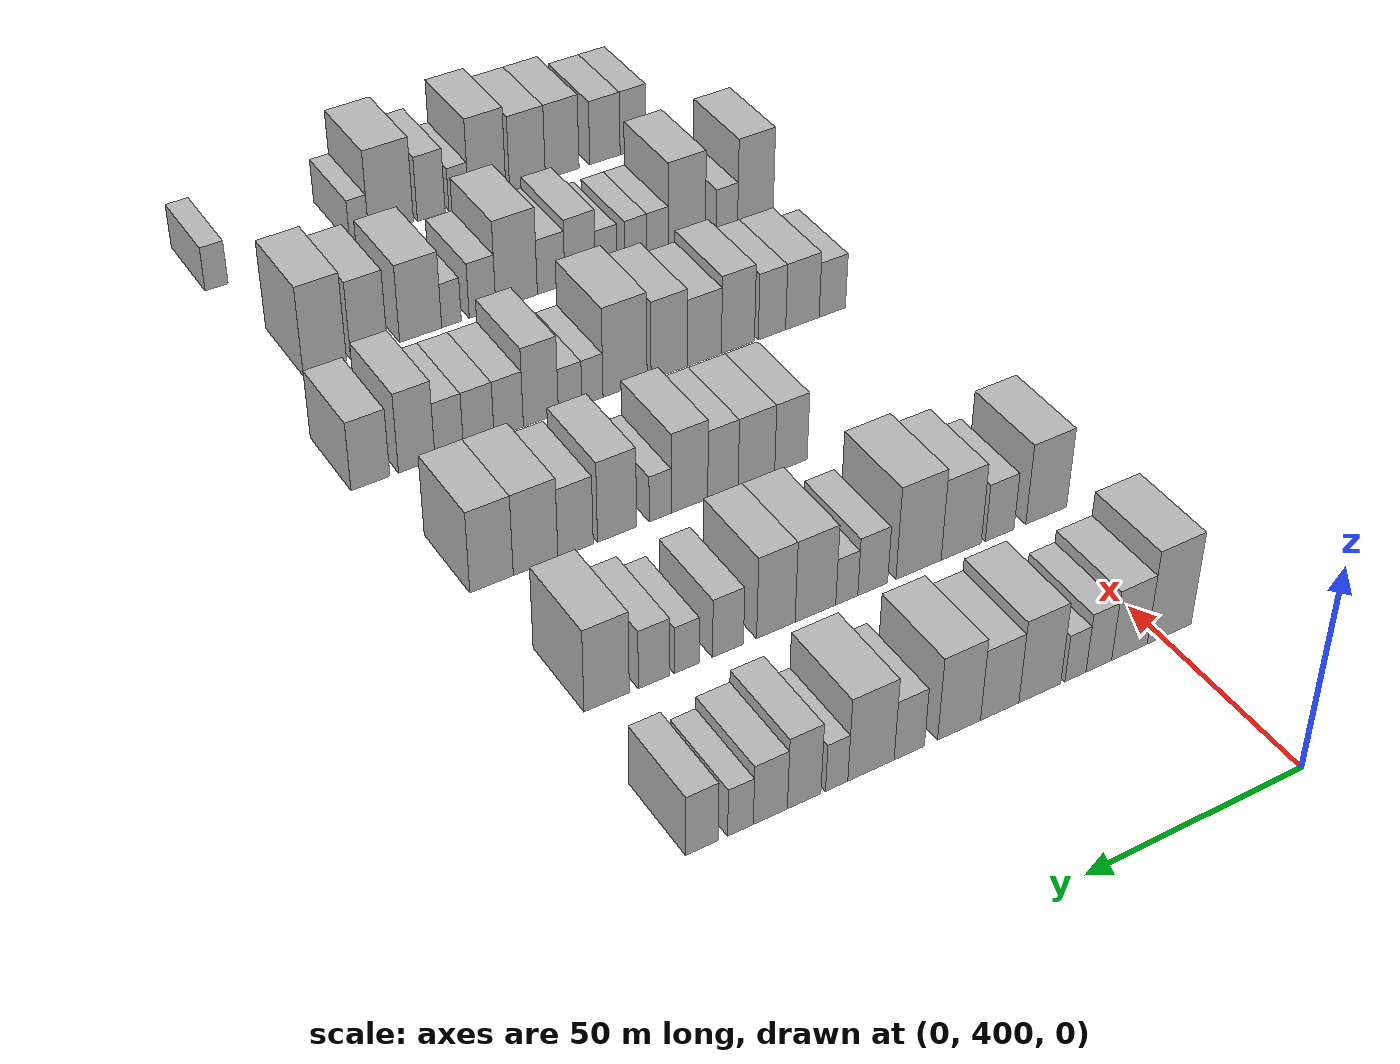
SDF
<sdf version="1.6">
 <world name="default">
  <model name="building_112">
   <static>1</static>
   <pose>50.0000 398.2572 0 0.000000 0.000000 0.000000</pose>
   <link name="link">
    <pose>0 0 12.00 0 0 0</pose>
    <collision name="collision"><geometry><box><size>20.0000 10.8968 24.0000</size></box></geometry></collision>
    <visual name="visual">
     <cast_shadows>0</cast_shadows>
     <geometry><box><size>20.0000 10.8968 24.0000</size></box></geometry>
     <material>
      <script>
       <uri>model://HANNAS_wall/materials/scripts</uri>
       <uri>model://HANNAS_wall/materials/textures</uri>
       <name>vrc/HANNAS_wall</name>
      </script>
     </material>
    </visual>
   </link>
  </model>
  <model name="building_113">
   <static>1</static>
   <pose>50.0000 408.0470 0 0.000000 0.000000 0.000000</pose>
   <link name="link">
    <pose>0 0 9.00 0 0 0</pose>
    <collision name="collision"><geometry><box><size>20.0000 8.6829 18.0000</size></box></geometry></collision>
    <visual name="visual">
     <cast_shadows>0</cast_shadows>
     <geometry><box><size>20.0000 8.6829 18.0000</size></box></geometry>
     <material>
      <script>
       <uri>model://HANNAS_wall/materials/scripts</uri>
       <uri>model://HANNAS_wall/materials/textures</uri>
       <name>vrc/HANNAS_wall</name>
      </script>
     </material>
    </visual>
   </link>
  </model>
  <model name="building_114">
   <static>1</static>
   <pose>50.0000 415.4791 0 0.000000 0.000000 0.000000</pose>
   <link name="link">
    <pose>0 0 7.50 0 0 0</pose>
    <collision name="collision"><geometry><box><size>20.0000 6.1812 15.0000</size></box></geometry></collision>
    <visual name="visual">
     <cast_shadows>0</cast_shadows>
     <geometry><box><size>20.0000 6.1812 15.0000</size></box></geometry>
     <material>
      <script>
       <uri>model://HANNAS_wall/materials/scripts</uri>
       <uri>model://HANNAS_wall/materials/textures</uri>
       <name>vrc/HANNAS_wall</name>
      </script>
     </material>
    </visual>
   </link>
  </model>
  <model name="building_115">
   <static>1</static>
   <pose>50.0000 421.0990 0 0.000000 0.000000 0.000000</pose>
   <link name="link">
    <pose>0 0 6.00 0 0 0</pose>
    <collision name="collision"><geometry><box><size>20.0000 5.0586 12.0000</size></box></geometry></collision>
    <visual name="visual">
     <cast_shadows>0</cast_shadows>
     <geometry><box><size>20.0000 5.0586 12.0000</size></box></geometry>
     <material>
      <script>
       <uri>model://HANNAS_wall/materials/scripts</uri>
       <uri>model://HANNAS_wall/materials/textures</uri>
       <name>vrc/HANNAS_wall</name>
      </script>
     </material>
    </visual>
   </link>
  </model>
  <model name="building_116">
   <static>1</static>
   <pose>50.0000 429.5648 0 0.000000 0.000000 0.000000</pose>
   <link name="link">
    <pose>0 0 10.50 0 0 0</pose>
    <collision name="collision"><geometry><box><size>20.0000 9.8732 21.0000</size></box></geometry></collision>
    <visual name="visual">
     <cast_shadows>0</cast_shadows>
     <geometry><box><size>20.0000 9.8732 21.0000</size></box></geometry>
     <material>
      <script>
       <uri>model://HANNAS_wall/materials/scripts</uri>
       <uri>model://HANNAS_wall/materials/textures</uri>
       <name>vrc/HANNAS_wall</name>
      </script>
     </material>
    </visual>
   </link>
  </model>
  <model name="building_117">
   <static>1</static>
   <pose>50.0000 438.9637 0 0.000000 0.000000 0.000000</pose>
   <link name="link">
    <pose>0 0 9.00 0 0 0</pose>
    <collision name="collision"><geometry><box><size>20.0000 8.9246 18.0000</size></box></geometry></collision>
    <visual name="visual">
     <cast_shadows>0</cast_shadows>
     <geometry><box><size>20.0000 8.9246 18.0000</size></box></geometry>
     <material>
      <script>
       <uri>model://HANNAS_wall/materials/scripts</uri>
       <uri>model://HANNAS_wall/materials/textures</uri>
       <name>vrc/HANNAS_wall</name>
      </script>
     </material>
    </visual>
   </link>
  </model>
  <model name="building_118">
   <static>1</static>
   <pose>50.0000 448.3294 0 0.000000 0.000000 0.000000</pose>
   <link name="link">
    <pose>0 0 10.50 0 0 0</pose>
    <collision name="collision"><geometry><box><size>20.0000 9.8068 21.0000</size></box></geometry></collision>
    <visual name="visual">
     <cast_shadows>0</cast_shadows>
     <geometry><box><size>20.0000 9.8068 21.0000</size></box></geometry>
     <material>
      <script>
       <uri>model://HANNAS_wall/materials/scripts</uri>
       <uri>model://HANNAS_wall/materials/textures</uri>
       <name>vrc/HANNAS_wall</name>
      </script>
     </material>
    </visual>
   </link>
  </model>
  <model name="building_119">
   <static>1</static>
   <pose>50.0000 459.6302 0 0.000000 0.000000 0.000000</pose>
   <link name="link">
    <pose>0 0 7.50 0 0 0</pose>
    <collision name="collision"><geometry><box><size>20.0000 6.7948 15.0000</size></box></geometry></collision>
    <visual name="visual">
     <cast_shadows>0</cast_shadows>
     <geometry><box><size>20.0000 6.7948 15.0000</size></box></geometry>
     <material>
      <script>
       <uri>model://HANNAS_wall/materials/scripts</uri>
       <uri>model://HANNAS_wall/materials/textures</uri>
       <name>vrc/HANNAS_wall</name>
      </script>
     </material>
    </visual>
   </link>
  </model>
  <model name="building_120">
   <static>1</static>
   <pose>50.0000 468.1573 0 0.000000 0.000000 0.000000</pose>
   <link name="link">
    <pose>0 0 10.50 0 0 0</pose>
    <collision name="collision"><geometry><box><size>20.0000 10.2593 21.0000</size></box></geometry></collision>
    <visual name="visual">
     <cast_shadows>0</cast_shadows>
     <geometry><box><size>20.0000 10.2593 21.0000</size></box></geometry>
     <material>
      <script>
       <uri>model://HANNAS_wall/materials/scripts</uri>
       <uri>model://HANNAS_wall/materials/textures</uri>
       <name>vrc/HANNAS_wall</name>
      </script>
     </material>
    </visual>
   </link>
  </model>
  <model name="building_121">
   <static>1</static>
   <pose>50.0000 475.7291 0 0.000000 0.000000 0.000000</pose>
   <link name="link">
    <pose>0 0 6.00 0 0 0</pose>
    <collision name="collision"><geometry><box><size>20.0000 4.8845 12.0000</size></box></geometry></collision>
    <visual name="visual">
     <cast_shadows>0</cast_shadows>
     <geometry><box><size>20.0000 4.8845 12.0000</size></box></geometry>
     <material>
      <script>
       <uri>model://HANNAS_wall/materials/scripts</uri>
       <uri>model://HANNAS_wall/materials/textures</uri>
       <name>vrc/HANNAS_wall</name>
      </script>
     </material>
    </visual>
   </link>
  </model>
  <model name="building_122">
   <static>1</static>
   <pose>50.0000 482.7963 0 0.000000 0.000000 0.000000</pose>
   <link name="link">
    <pose>0 0 9.00 0 0 0</pose>
    <collision name="collision"><geometry><box><size>20.0000 7.2499 18.0000</size></box></geometry></collision>
    <visual name="visual">
     <cast_shadows>0</cast_shadows>
     <geometry><box><size>20.0000 7.2499 18.0000</size></box></geometry>
     <material>
      <script>
       <uri>model://HANNAS_wall/materials/scripts</uri>
       <uri>model://HANNAS_wall/materials/textures</uri>
       <name>vrc/HANNAS_wall</name>
      </script>
     </material>
    </visual>
   </link>
  </model>
  <model name="building_123">
   <static>1</static>
   <pose>50.0000 490.0557 0 0.000000 0.000000 0.000000</pose>
   <link name="link">
    <pose>0 0 7.50 0 0 0</pose>
    <collision name="collision"><geometry><box><size>20.0000 7.2689 15.0000</size></box></geometry></collision>
    <visual name="visual">
     <cast_shadows>0</cast_shadows>
     <geometry><box><size>20.0000 7.2689 15.0000</size></box></geometry>
     <material>
      <script>
       <uri>model://HANNAS_wall/materials/scripts</uri>
       <uri>model://HANNAS_wall/materials/textures</uri>
       <name>vrc/HANNAS_wall</name>
      </script>
     </material>
    </visual>
   </link>
  </model>
  <model name="building_124">
   <static>1</static>
   <pose>50.0000 496.4019 0 0.000000 0.000000 0.000000</pose>
   <link name="link">
    <pose>0 0 6.00 0 0 0</pose>
    <collision name="collision"><geometry><box><size>20.0000 5.4235 12.0000</size></box></geometry></collision>
    <visual name="visual">
     <cast_shadows>0</cast_shadows>
     <geometry><box><size>20.0000 5.4235 12.0000</size></box></geometry>
     <material>
      <script>
       <uri>model://HANNAS_wall/materials/scripts</uri>
       <uri>model://HANNAS_wall/materials/textures</uri>
       <name>vrc/HANNAS_wall</name>
      </script>
     </material>
    </visual>
   </link>
  </model>
  <model name="building_125">
   <static>1</static>
   <pose>50.0000 504.4912 0 0.000000 0.000000 0.000000</pose>
   <link name="link">
    <pose>0 0 7.50 0 0 0</pose>
    <collision name="collision"><geometry><box><size>20.0000 6.7550 15.0000</size></box></geometry></collision>
    <visual name="visual">
     <cast_shadows>0</cast_shadows>
     <geometry><box><size>20.0000 6.7550 15.0000</size></box></geometry>
     <material>
      <script>
       <uri>model://HANNAS_wall/materials/scripts</uri>
       <uri>model://HANNAS_wall/materials/textures</uri>
       <name>vrc/HANNAS_wall</name>
      </script>
     </material>
    </visual>
   </link>
  </model>
  <model name="building_248">
   <static>1</static>
   <pose>90.0000 397.5762 0 0.000000 0.000000 0.000000</pose>
   <link name="link">
    <pose>0 0 10.50 0 0 0</pose>
    <collision name="collision"><geometry><box><size>20.0000 10.4200 21.0000</size></box></geometry></collision>
    <visual name="visual">
     <cast_shadows>0</cast_shadows>
     <geometry><box><size>20.0000 10.4200 21.0000</size></box></geometry>
     <material>
      <script>
       <uri>model://HANNAS_wall/materials/scripts</uri>
       <uri>model://HANNAS_wall/materials/textures</uri>
       <name>vrc/HANNAS_wall</name>
      </script>
     </material>
    </visual>
   </link>
  </model>
  <model name="building_249">
   <static>1</static>
   <pose>90.0000 409.3842 0 0.000000 0.000000 0.000000</pose>
   <link name="link">
    <pose>0 0 7.50 0 0 0</pose>
    <collision name="collision"><geometry><box><size>20.0000 7.1959 15.0000</size></box></geometry></collision>
    <visual name="visual">
     <cast_shadows>0</cast_shadows>
     <geometry><box><size>20.0000 7.1959 15.0000</size></box></geometry>
     <material>
      <script>
       <uri>model://HANNAS_wall/materials/scripts</uri>
       <uri>model://HANNAS_wall/materials/textures</uri>
       <name>vrc/HANNAS_wall</name>
      </script>
     </material>
    </visual>
   </link>
  </model>
  <model name="building_250">
   <static>1</static>
   <pose>90.0000 418.9399 0 0.000000 0.000000 0.000000</pose>
   <link name="link">
    <pose>0 0 10.50 0 0 0</pose>
    <collision name="collision"><geometry><box><size>20.0000 9.9155 21.0000</size></box></geometry></collision>
    <visual name="visual">
     <cast_shadows>0</cast_shadows>
     <geometry><box><size>20.0000 9.9155 21.0000</size></box></geometry>
     <material>
      <script>
       <uri>model://HANNAS_wall/materials/scripts</uri>
       <uri>model://HANNAS_wall/materials/textures</uri>
       <name>vrc/HANNAS_wall</name>
      </script>
     </material>
    </visual>
   </link>
  </model>
  <model name="building_251">
   <static>1</static>
   <pose>90.0000 429.3923 0 0.000000 0.000000 0.000000</pose>
   <link name="link">
    <pose>0 0 12.00 0 0 0</pose>
    <collision name="collision"><geometry><box><size>20.0000 10.9893 24.0000</size></box></geometry></collision>
    <visual name="visual">
     <cast_shadows>0</cast_shadows>
     <geometry><box><size>20.0000 10.9893 24.0000</size></box></geometry>
     <material>
      <script>
       <uri>model://HANNAS_wall/materials/scripts</uri>
       <uri>model://HANNAS_wall/materials/textures</uri>
       <name>vrc/HANNAS_wall</name>
      </script>
     </material>
    </visual>
   </link>
  </model>
  <model name="building_252">
   <static>1</static>
   <pose>90.0000 440.4559 0 0.000000 0.000000 0.000000</pose>
   <link name="link">
    <pose>0 0 7.50 0 0 0</pose>
    <collision name="collision"><geometry><box><size>20.0000 7.1380 15.0000</size></box></geometry></collision>
    <visual name="visual">
     <cast_shadows>0</cast_shadows>
     <geometry><box><size>20.0000 7.1380 15.0000</size></box></geometry>
     <material>
      <script>
       <uri>model://HANNAS_wall/materials/scripts</uri>
       <uri>model://HANNAS_wall/materials/textures</uri>
       <name>vrc/HANNAS_wall</name>
      </script>
     </material>
    </visual>
   </link>
  </model>
  <model name="building_253">
   <static>1</static>
   <pose>90.0000 446.6306 0 0.000000 0.000000 0.000000</pose>
   <link name="link">
    <pose>0 0 6.00 0 0 0</pose>
    <collision name="collision"><geometry><box><size>20.0000 5.2112 12.0000</size></box></geometry></collision>
    <visual name="visual">
     <cast_shadows>0</cast_shadows>
     <geometry><box><size>20.0000 5.2112 12.0000</size></box></geometry>
     <material>
      <script>
       <uri>model://HANNAS_wall/materials/scripts</uri>
       <uri>model://HANNAS_wall/materials/textures</uri>
       <name>vrc/HANNAS_wall</name>
      </script>
     </material>
    </visual>
   </link>
  </model>
  <model name="building_254">
   <static>1</static>
   <pose>90.0000 454.0018 0 0.000000 0.000000 0.000000</pose>
   <link name="link">
    <pose>0 0 10.50 0 0 0</pose>
    <collision name="collision"><geometry><box><size>20.0000 9.5312 21.0000</size></box></geometry></collision>
    <visual name="visual">
     <cast_shadows>0</cast_shadows>
     <geometry><box><size>20.0000 9.5312 21.0000</size></box></geometry>
     <material>
      <script>
       <uri>model://HANNAS_wall/materials/scripts</uri>
       <uri>model://HANNAS_wall/materials/textures</uri>
       <name>vrc/HANNAS_wall</name>
      </script>
     </material>
    </visual>
   </link>
  </model>
  <model name="building_255">
   <static>1</static>
   <pose>90.0000 463.2066 0 0.000000 0.000000 0.000000</pose>
   <link name="link">
    <pose>0 0 10.50 0 0 0</pose>
    <collision name="collision"><geometry><box><size>20.0000 8.8784 21.0000</size></box></geometry></collision>
    <visual name="visual">
     <cast_shadows>0</cast_shadows>
     <geometry><box><size>20.0000 8.8784 21.0000</size></box></geometry>
     <material>
      <script>
       <uri>model://HANNAS_wall/materials/scripts</uri>
       <uri>model://HANNAS_wall/materials/textures</uri>
       <name>vrc/HANNAS_wall</name>
      </script>
     </material>
    </visual>
   </link>
  </model>
  <model name="building_256">
   <static>1</static>
   <pose>90.0000 474.1588 0 0.000000 0.000000 0.000000</pose>
   <link name="link">
    <pose>0 0 7.50 0 0 0</pose>
    <collision name="collision"><geometry><box><size>20.0000 7.0260 15.0000</size></box></geometry></collision>
    <visual name="visual">
     <cast_shadows>0</cast_shadows>
     <geometry><box><size>20.0000 7.0260 15.0000</size></box></geometry>
     <material>
      <script>
       <uri>model://HANNAS_wall/materials/scripts</uri>
       <uri>model://HANNAS_wall/materials/textures</uri>
       <name>vrc/HANNAS_wall</name>
      </script>
     </material>
    </visual>
   </link>
  </model>
  <model name="building_257">
   <static>1</static>
   <pose>90.0000 483.4395 0 0.000000 0.000000 0.000000</pose>
   <link name="link">
    <pose>0 0 6.00 0 0 0</pose>
    <collision name="collision"><geometry><box><size>20.0000 5.5355 12.0000</size></box></geometry></collision>
    <visual name="visual">
     <cast_shadows>0</cast_shadows>
     <geometry><box><size>20.0000 5.5355 12.0000</size></box></geometry>
     <material>
      <script>
       <uri>model://HANNAS_wall/materials/scripts</uri>
       <uri>model://HANNAS_wall/materials/textures</uri>
       <name>vrc/HANNAS_wall</name>
      </script>
     </material>
    </visual>
   </link>
  </model>
  <model name="building_258">
   <static>1</static>
   <pose>90.0000 490.6788 0 0.000000 0.000000 0.000000</pose>
   <link name="link">
    <pose>0 0 7.50 0 0 0</pose>
    <collision name="collision"><geometry><box><size>20.0000 6.9430 15.0000</size></box></geometry></collision>
    <visual name="visual">
     <cast_shadows>0</cast_shadows>
     <geometry><box><size>20.0000 6.9430 15.0000</size></box></geometry>
     <material>
      <script>
       <uri>model://HANNAS_wall/materials/scripts</uri>
       <uri>model://HANNAS_wall/materials/textures</uri>
       <name>vrc/HANNAS_wall</name>
      </script>
     </material>
    </visual>
   </link>
  </model>
  <model name="building_259">
   <static>1</static>
   <pose>90.0000 501.0623 0 0.000000 0.000000 0.000000</pose>
   <link name="link">
    <pose>0 0 10.50 0 0 0</pose>
    <collision name="collision"><geometry><box><size>20.0000 9.8241 21.0000</size></box></geometry></collision>
    <visual name="visual">
     <cast_shadows>0</cast_shadows>
     <geometry><box><size>20.0000 9.8241 21.0000</size></box></geometry>
     <material>
      <script>
       <uri>model://HANNAS_wall/materials/scripts</uri>
       <uri>model://HANNAS_wall/materials/textures</uri>
       <name>vrc/HANNAS_wall</name>
      </script>
     </material>
    </visual>
   </link>
  </model>
  <model name="building_385">
   <static>1</static>
   <pose>130.0000 433.8076 0 0.000000 0.000000 0.000000</pose>
   <link name="link">
    <pose>0 0 9.00 0 0 0</pose>
    <collision name="collision"><geometry><box><size>20.0000 8.0547 18.0000</size></box></geometry></collision>
    <visual name="visual">
     <cast_shadows>0</cast_shadows>
     <geometry><box><size>20.0000 8.0547 18.0000</size></box></geometry>
     <material>
      <script>
       <uri>model://HANNAS_wall/materials/scripts</uri>
       <uri>model://HANNAS_wall/materials/textures</uri>
       <name>vrc/HANNAS_wall</name>
      </script>
     </material>
    </visual>
   </link>
  </model>
  <model name="building_386">
   <static>1</static>
   <pose>130.0000 442.3312 0 0.000000 0.000000 0.000000</pose>
   <link name="link">
    <pose>0 0 9.00 0 0 0</pose>
    <collision name="collision"><geometry><box><size>20.0000 8.9926 18.0000</size></box></geometry></collision>
    <visual name="visual">
     <cast_shadows>0</cast_shadows>
     <geometry><box><size>20.0000 8.9926 18.0000</size></box></geometry>
     <material>
      <script>
       <uri>model://HANNAS_wall/materials/scripts</uri>
       <uri>model://HANNAS_wall/materials/textures</uri>
       <name>vrc/HANNAS_wall</name>
      </script>
     </material>
    </visual>
   </link>
  </model>
  <model name="building_387">
   <static>1</static>
   <pose>130.0000 450.5263 0 0.000000 0.000000 0.000000</pose>
   <link name="link">
    <pose>0 0 9.00 0 0 0</pose>
    <collision name="collision"><geometry><box><size>20.0000 7.3976 18.0000</size></box></geometry></collision>
    <visual name="visual">
     <cast_shadows>0</cast_shadows>
     <geometry><box><size>20.0000 7.3976 18.0000</size></box></geometry>
     <material>
      <script>
       <uri>model://HANNAS_wall/materials/scripts</uri>
       <uri>model://HANNAS_wall/materials/textures</uri>
       <name>vrc/HANNAS_wall</name>
      </script>
     </material>
    </visual>
   </link>
  </model>
  <model name="building_388">
   <static>1</static>
   <pose>130.0000 458.6192 0 0.000000 0.000000 0.000000</pose>
   <link name="link">
    <pose>0 0 10.50 0 0 0</pose>
    <collision name="collision"><geometry><box><size>20.0000 8.7881 21.0000</size></box></geometry></collision>
    <visual name="visual">
     <cast_shadows>0</cast_shadows>
     <geometry><box><size>20.0000 8.7881 21.0000</size></box></geometry>
     <material>
      <script>
       <uri>model://HANNAS_wall/materials/scripts</uri>
       <uri>model://HANNAS_wall/materials/textures</uri>
       <name>vrc/HANNAS_wall</name>
      </script>
     </material>
    </visual>
   </link>
  </model>
  <model name="building_389">
   <static>1</static>
   <pose>130.0000 465.6000 0 0.000000 0.000000 0.000000</pose>
   <link name="link">
    <pose>0 0 6.00 0 0 0</pose>
    <collision name="collision"><geometry><box><size>20.0000 5.1735 12.0000</size></box></geometry></collision>
    <visual name="visual">
     <cast_shadows>0</cast_shadows>
     <geometry><box><size>20.0000 5.1735 12.0000</size></box></geometry>
     <material>
      <script>
       <uri>model://HANNAS_wall/materials/scripts</uri>
       <uri>model://HANNAS_wall/materials/textures</uri>
       <name>vrc/HANNAS_wall</name>
      </script>
     </material>
    </visual>
   </link>
  </model>
  <model name="building_390">
   <static>1</static>
   <pose>130.0000 475.7463 0 0.000000 0.000000 0.000000</pose>
   <link name="link">
    <pose>0 0 10.50 0 0 0</pose>
    <collision name="collision"><geometry><box><size>20.0000 9.1189 21.0000</size></box></geometry></collision>
    <visual name="visual">
     <cast_shadows>0</cast_shadows>
     <geometry><box><size>20.0000 9.1189 21.0000</size></box></geometry>
     <material>
      <script>
       <uri>model://HANNAS_wall/materials/scripts</uri>
       <uri>model://HANNAS_wall/materials/textures</uri>
       <name>vrc/HANNAS_wall</name>
      </script>
     </material>
    </visual>
   </link>
  </model>
  <model name="building_391">
   <static>1</static>
   <pose>130.0000 485.3675 0 0.000000 0.000000 0.000000</pose>
   <link name="link">
    <pose>0 0 9.00 0 0 0</pose>
    <collision name="collision"><geometry><box><size>20.0000 8.1236 18.0000</size></box></geometry></collision>
    <visual name="visual">
     <cast_shadows>0</cast_shadows>
     <geometry><box><size>20.0000 8.1236 18.0000</size></box></geometry>
     <material>
      <script>
       <uri>model://HANNAS_wall/materials/scripts</uri>
       <uri>model://HANNAS_wall/materials/textures</uri>
       <name>vrc/HANNAS_wall</name>
      </script>
     </material>
    </visual>
   </link>
  </model>
  <model name="building_392">
   <static>1</static>
   <pose>130.0000 494.5028 0 0.000000 0.000000 0.000000</pose>
   <link name="link">
    <pose>0 0 10.50 0 0 0</pose>
    <collision name="collision"><geometry><box><size>20.0000 10.1471 21.0000</size></box></geometry></collision>
    <visual name="visual">
     <cast_shadows>0</cast_shadows>
     <geometry><box><size>20.0000 10.1471 21.0000</size></box></geometry>
     <material>
      <script>
       <uri>model://HANNAS_wall/materials/scripts</uri>
       <uri>model://HANNAS_wall/materials/textures</uri>
       <name>vrc/HANNAS_wall</name>
      </script>
     </material>
    </visual>
   </link>
  </model>
  <model name="building_393">
   <static>1</static>
   <pose>130.0000 504.4474 0 0.000000 0.000000 0.000000</pose>
   <link name="link">
    <pose>0 0 10.50 0 0 0</pose>
    <collision name="collision"><geometry><box><size>20.0000 9.7421 21.0000</size></box></geometry></collision>
    <visual name="visual">
     <cast_shadows>0</cast_shadows>
     <geometry><box><size>20.0000 9.7421 21.0000</size></box></geometry>
     <material>
      <script>
       <uri>model://HANNAS_wall/materials/scripts</uri>
       <uri>model://HANNAS_wall/materials/textures</uri>
       <name>vrc/HANNAS_wall</name>
      </script>
     </material>
    </visual>
   </link>
  </model>
  <model name="building_516">
   <static>1</static>
   <pose>170.0000 396.7796 0 0.000000 0.000000 0.000000</pose>
   <link name="link">
    <pose>0 0 7.50 0 0 0</pose>
    <collision name="collision"><geometry><box><size>20.0000 7.1192 15.0000</size></box></geometry></collision>
    <visual name="visual">
     <cast_shadows>0</cast_shadows>
     <geometry><box><size>20.0000 7.1192 15.0000</size></box></geometry>
     <material>
      <script>
       <uri>model://HANNAS_wall/materials/scripts</uri>
       <uri>model://HANNAS_wall/materials/textures</uri>
       <name>vrc/HANNAS_wall</name>
      </script>
     </material>
    </visual>
   </link>
  </model>
  <model name="building_517">
   <static>1</static>
   <pose>170.0000 404.8167 0 0.000000 0.000000 0.000000</pose>
   <link name="link">
    <pose>0 0 9.00 0 0 0</pose>
    <collision name="collision"><geometry><box><size>20.0000 8.9550 18.0000</size></box></geometry></collision>
    <visual name="visual">
     <cast_shadows>0</cast_shadows>
     <geometry><box><size>20.0000 8.9550 18.0000</size></box></geometry>
     <material>
      <script>
       <uri>model://HANNAS_wall/materials/scripts</uri>
       <uri>model://HANNAS_wall/materials/textures</uri>
       <name>vrc/HANNAS_wall</name>
      </script>
     </material>
    </visual>
   </link>
  </model>
  <model name="building_518">
   <static>1</static>
   <pose>170.0000 412.9040 0 0.000000 0.000000 0.000000</pose>
   <link name="link">
    <pose>0 0 9.00 0 0 0</pose>
    <collision name="collision"><geometry><box><size>20.0000 7.2198 18.0000</size></box></geometry></collision>
    <visual name="visual">
     <cast_shadows>0</cast_shadows>
     <geometry><box><size>20.0000 7.2198 18.0000</size></box></geometry>
     <material>
      <script>
       <uri>model://HANNAS_wall/materials/scripts</uri>
       <uri>model://HANNAS_wall/materials/textures</uri>
       <name>vrc/HANNAS_wall</name>
      </script>
     </material>
    </visual>
   </link>
  </model>
  <model name="building_519">
   <static>1</static>
   <pose>170.0000 421.8271 0 0.000000 0.000000 0.000000</pose>
   <link name="link">
    <pose>0 0 10.50 0 0 0</pose>
    <collision name="collision"><geometry><box><size>20.0000 8.6263 21.0000</size></box></geometry></collision>
    <visual name="visual">
     <cast_shadows>0</cast_shadows>
     <geometry><box><size>20.0000 8.6263 21.0000</size></box></geometry>
     <material>
      <script>
       <uri>model://HANNAS_wall/materials/scripts</uri>
       <uri>model://HANNAS_wall/materials/textures</uri>
       <name>vrc/HANNAS_wall</name>
      </script>
     </material>
    </visual>
   </link>
  </model>
  <model name="building_520">
   <static>1</static>
   <pose>170.0000 430.5589 0 0.000000 0.000000 0.000000</pose>
   <link name="link">
    <pose>0 0 9.00 0 0 0</pose>
    <collision name="collision"><geometry><box><size>20.0000 8.8372 18.0000</size></box></geometry></collision>
    <visual name="visual">
     <cast_shadows>0</cast_shadows>
     <geometry><box><size>20.0000 8.8372 18.0000</size></box></geometry>
     <material>
      <script>
       <uri>model://HANNAS_wall/materials/scripts</uri>
       <uri>model://HANNAS_wall/materials/textures</uri>
       <name>vrc/HANNAS_wall</name>
      </script>
     </material>
    </visual>
   </link>
  </model>
  <model name="building_521">
   <static>1</static>
   <pose>170.0000 439.5605 0 0.000000 0.000000 0.000000</pose>
   <link name="link">
    <pose>0 0 10.50 0 0 0</pose>
    <collision name="collision"><geometry><box><size>20.0000 9.1661 21.0000</size></box></geometry></collision>
    <visual name="visual">
     <cast_shadows>0</cast_shadows>
     <geometry><box><size>20.0000 9.1661 21.0000</size></box></geometry>
     <material>
      <script>
       <uri>model://HANNAS_wall/materials/scripts</uri>
       <uri>model://HANNAS_wall/materials/textures</uri>
       <name>vrc/HANNAS_wall</name>
      </script>
     </material>
    </visual>
   </link>
  </model>
  <model name="building_522">
   <static>1</static>
   <pose>170.0000 450.6634 0 0.000000 0.000000 0.000000</pose>
   <link name="link">
    <pose>0 0 12.00 0 0 0</pose>
    <collision name="collision"><geometry><box><size>20.0000 11.0398 24.0000</size></box></geometry></collision>
    <visual name="visual">
     <cast_shadows>0</cast_shadows>
     <geometry><box><size>20.0000 11.0398 24.0000</size></box></geometry>
     <material>
      <script>
       <uri>model://HANNAS_wall/materials/scripts</uri>
       <uri>model://HANNAS_wall/materials/textures</uri>
       <name>vrc/HANNAS_wall</name>
      </script>
     </material>
    </visual>
   </link>
  </model>
  <model name="building_523">
   <static>1</static>
   <pose>170.0000 458.7862 0 0.000000 0.000000 0.000000</pose>
   <link name="link">
    <pose>0 0 6.00 0 0 0</pose>
    <collision name="collision"><geometry><box><size>20.0000 5.2056 12.0000</size></box></geometry></collision>
    <visual name="visual">
     <cast_shadows>0</cast_shadows>
     <geometry><box><size>20.0000 5.2056 12.0000</size></box></geometry>
     <material>
      <script>
       <uri>model://HANNAS_wall/materials/scripts</uri>
       <uri>model://HANNAS_wall/materials/textures</uri>
       <name>vrc/HANNAS_wall</name>
      </script>
     </material>
    </visual>
   </link>
  </model>
  <model name="building_524">
   <static>1</static>
   <pose>170.0000 464.2886 0 0.000000 0.000000 0.000000</pose>
   <link name="link">
    <pose>0 0 6.00 0 0 0</pose>
    <collision name="collision"><geometry><box><size>20.0000 5.7993 12.0000</size></box></geometry></collision>
    <visual name="visual">
     <cast_shadows>0</cast_shadows>
     <geometry><box><size>20.0000 5.7993 12.0000</size></box></geometry>
     <material>
      <script>
       <uri>model://HANNAS_wall/materials/scripts</uri>
       <uri>model://HANNAS_wall/materials/textures</uri>
       <name>vrc/HANNAS_wall</name>
      </script>
     </material>
    </visual>
   </link>
  </model>
  <model name="building_525">
   <static>1</static>
   <pose>170.0000 471.4448 0 0.000000 0.000000 0.000000</pose>
   <link name="link">
    <pose>0 0 10.50 0 0 0</pose>
    <collision name="collision"><geometry><box><size>20.0000 8.5130 21.0000</size></box></geometry></collision>
    <visual name="visual">
     <cast_shadows>0</cast_shadows>
     <geometry><box><size>20.0000 8.5130 21.0000</size></box></geometry>
     <material>
      <script>
       <uri>model://HANNAS_wall/materials/scripts</uri>
       <uri>model://HANNAS_wall/materials/textures</uri>
       <name>vrc/HANNAS_wall</name>
      </script>
     </material>
    </visual>
   </link>
  </model>
  <model name="building_526">
   <static>1</static>
   <pose>170.0000 479.2213 0 0.000000 0.000000 0.000000</pose>
   <link name="link">
    <pose>0 0 7.50 0 0 0</pose>
    <collision name="collision"><geometry><box><size>20.0000 7.0400 15.0000</size></box></geometry></collision>
    <visual name="visual">
     <cast_shadows>0</cast_shadows>
     <geometry><box><size>20.0000 7.0400 15.0000</size></box></geometry>
     <material>
      <script>
       <uri>model://HANNAS_wall/materials/scripts</uri>
       <uri>model://HANNAS_wall/materials/textures</uri>
       <name>vrc/HANNAS_wall</name>
      </script>
     </material>
    </visual>
   </link>
  </model>
  <model name="building_527">
   <static>1</static>
   <pose>170.0000 486.3875 0 0.000000 0.000000 0.000000</pose>
   <link name="link">
    <pose>0 0 7.50 0 0 0</pose>
    <collision name="collision"><geometry><box><size>20.0000 7.2925 15.0000</size></box></geometry></collision>
    <visual name="visual">
     <cast_shadows>0</cast_shadows>
     <geometry><box><size>20.0000 7.2925 15.0000</size></box></geometry>
     <material>
      <script>
       <uri>model://HANNAS_wall/materials/scripts</uri>
       <uri>model://HANNAS_wall/materials/textures</uri>
       <name>vrc/HANNAS_wall</name>
      </script>
     </material>
    </visual>
   </link>
  </model>
  <model name="building_528">
   <static>1</static>
   <pose>170.0000 493.3781 0 0.000000 0.000000 0.000000</pose>
   <link name="link">
    <pose>0 0 7.50 0 0 0</pose>
    <collision name="collision"><geometry><box><size>20.0000 6.6887 15.0000</size></box></geometry></collision>
    <visual name="visual">
     <cast_shadows>0</cast_shadows>
     <geometry><box><size>20.0000 6.6887 15.0000</size></box></geometry>
     <material>
      <script>
       <uri>model://HANNAS_wall/materials/scripts</uri>
       <uri>model://HANNAS_wall/materials/textures</uri>
       <name>vrc/HANNAS_wall</name>
      </script>
     </material>
    </visual>
   </link>
  </model>
  <model name="building_529">
   <static>1</static>
   <pose>170.0000 500.9866 0 0.000000 0.000000 0.000000</pose>
   <link name="link">
    <pose>0 0 10.50 0 0 0</pose>
    <collision name="collision"><geometry><box><size>20.0000 8.5282 21.0000</size></box></geometry></collision>
    <visual name="visual">
     <cast_shadows>0</cast_shadows>
     <geometry><box><size>20.0000 8.5282 21.0000</size></box></geometry>
     <material>
      <script>
       <uri>model://HANNAS_wall/materials/scripts</uri>
       <uri>model://HANNAS_wall/materials/textures</uri>
       <name>vrc/HANNAS_wall</name>
      </script>
     </material>
    </visual>
   </link>
  </model>
  <model name="building_530">
   <static>1</static>
   <pose>170.0000 511.7076 0 0.000000 0.000000 0.000000</pose>
   <link name="link">
    <pose>0 0 9.00 0 0 0</pose>
    <collision name="collision"><geometry><box><size>20.0000 8.9138 18.0000</size></box></geometry></collision>
    <visual name="visual">
     <cast_shadows>0</cast_shadows>
     <geometry><box><size>20.0000 8.9138 18.0000</size></box></geometry>
     <material>
      <script>
       <uri>model://HANNAS_wall/materials/scripts</uri>
       <uri>model://HANNAS_wall/materials/textures</uri>
       <name>vrc/HANNAS_wall</name>
      </script>
     </material>
    </visual>
   </link>
  </model>
  <model name="building_660">
   <static>1</static>
   <pose>210.0000 391.9433 0 0.000000 0.000000 0.000000</pose>
   <link name="link">
    <pose>0 0 12.00 0 0 0</pose>
    <collision name="collision"><geometry><box><size>20.0000 9.9342 24.0000</size></box></geometry></collision>
    <visual name="visual">
     <cast_shadows>0</cast_shadows>
     <geometry><box><size>20.0000 9.9342 24.0000</size></box></geometry>
     <material>
      <script>
       <uri>model://HANNAS_wall/materials/scripts</uri>
       <uri>model://HANNAS_wall/materials/textures</uri>
       <name>vrc/HANNAS_wall</name>
      </script>
     </material>
    </visual>
   </link>
  </model>
  <model name="building_661">
   <static>1</static>
   <pose>210.0000 399.8443 0 0.000000 0.000000 0.000000</pose>
   <link name="link">
    <pose>0 0 6.00 0 0 0</pose>
    <collision name="collision"><geometry><box><size>20.0000 5.8678 12.0000</size></box></geometry></collision>
    <visual name="visual">
     <cast_shadows>0</cast_shadows>
     <geometry><box><size>20.0000 5.8678 12.0000</size></box></geometry>
     <material>
      <script>
       <uri>model://HANNAS_wall/materials/scripts</uri>
       <uri>model://HANNAS_wall/materials/textures</uri>
       <name>vrc/HANNAS_wall</name>
      </script>
     </material>
    </visual>
   </link>
  </model>
  <model name="building_662">
   <static>1</static>
   <pose>210.0000 410.8651 0 0.000000 0.000000 0.000000</pose>
   <link name="link">
    <pose>0 0 12.00 0 0 0</pose>
    <collision name="collision"><geometry><box><size>20.0000 10.1737 24.0000</size></box></geometry></collision>
    <visual name="visual">
     <cast_shadows>0</cast_shadows>
     <geometry><box><size>20.0000 10.1737 24.0000</size></box></geometry>
     <material>
      <script>
       <uri>model://HANNAS_wall/materials/scripts</uri>
       <uri>model://HANNAS_wall/materials/textures</uri>
       <name>vrc/HANNAS_wall</name>
      </script>
     </material>
    </visual>
   </link>
  </model>
  <model name="building_663">
   <static>1</static>
   <pose>210.0000 418.8227 0 0.000000 0.000000 0.000000</pose>
   <link name="link">
    <pose>0 0 6.00 0 0 0</pose>
    <collision name="collision"><geometry><box><size>20.0000 5.7415 12.0000</size></box></geometry></collision>
    <visual name="visual">
     <cast_shadows>0</cast_shadows>
     <geometry><box><size>20.0000 5.7415 12.0000</size></box></geometry>
     <material>
      <script>
       <uri>model://HANNAS_wall/materials/scripts</uri>
       <uri>model://HANNAS_wall/materials/textures</uri>
       <name>vrc/HANNAS_wall</name>
      </script>
     </material>
    </visual>
   </link>
  </model>
  <model name="building_664">
   <static>1</static>
   <pose>210.0000 424.6639 0 0.000000 0.000000 0.000000</pose>
   <link name="link">
    <pose>0 0 6.00 0 0 0</pose>
    <collision name="collision"><geometry><box><size>20.0000 5.9410 12.0000</size></box></geometry></collision>
    <visual name="visual">
     <cast_shadows>0</cast_shadows>
     <geometry><box><size>20.0000 5.9410 12.0000</size></box></geometry>
     <material>
      <script>
       <uri>model://HANNAS_wall/materials/scripts</uri>
       <uri>model://HANNAS_wall/materials/textures</uri>
       <name>vrc/HANNAS_wall</name>
      </script>
     </material>
    </visual>
   </link>
  </model>
  <model name="building_665">
   <static>1</static>
   <pose>210.0000 432.4802 0 0.000000 0.000000 0.000000</pose>
   <link name="link">
    <pose>0 0 6.00 0 0 0</pose>
    <collision name="collision"><geometry><box><size>20.0000 5.6916 12.0000</size></box></geometry></collision>
    <visual name="visual">
     <cast_shadows>0</cast_shadows>
     <geometry><box><size>20.0000 5.6916 12.0000</size></box></geometry>
     <material>
      <script>
       <uri>model://HANNAS_wall/materials/scripts</uri>
       <uri>model://HANNAS_wall/materials/textures</uri>
       <name>vrc/HANNAS_wall</name>
      </script>
     </material>
    </visual>
   </link>
  </model>
  <model name="building_666">
   <static>1</static>
   <pose>210.0000 439.3340 0 0.000000 0.000000 0.000000</pose>
   <link name="link">
    <pose>0 0 9.00 0 0 0</pose>
    <collision name="collision"><geometry><box><size>20.0000 8.0160 18.0000</size></box></geometry></collision>
    <visual name="visual">
     <cast_shadows>0</cast_shadows>
     <geometry><box><size>20.0000 8.0160 18.0000</size></box></geometry>
     <material>
      <script>
       <uri>model://HANNAS_wall/materials/scripts</uri>
       <uri>model://HANNAS_wall/materials/textures</uri>
       <name>vrc/HANNAS_wall</name>
      </script>
     </material>
    </visual>
   </link>
  </model>
  <model name="building_667">
   <static>1</static>
   <pose>210.0000 446.9227 0 0.000000 0.000000 0.000000</pose>
   <link name="link">
    <pose>0 0 7.50 0 0 0</pose>
    <collision name="collision"><geometry><box><size>20.0000 7.1613 15.0000</size></box></geometry></collision>
    <visual name="visual">
     <cast_shadows>0</cast_shadows>
     <geometry><box><size>20.0000 7.1613 15.0000</size></box></geometry>
     <material>
      <script>
       <uri>model://HANNAS_wall/materials/scripts</uri>
       <uri>model://HANNAS_wall/materials/textures</uri>
       <name>vrc/HANNAS_wall</name>
      </script>
     </material>
    </visual>
   </link>
  </model>
  <model name="building_668">
   <static>1</static>
   <pose>210.0000 455.8240 0 0.000000 0.000000 0.000000</pose>
   <link name="link">
    <pose>0 0 12.00 0 0 0</pose>
    <collision name="collision"><geometry><box><size>20.0000 10.6414 24.0000</size></box></geometry></collision>
    <visual name="visual">
     <cast_shadows>0</cast_shadows>
     <geometry><box><size>20.0000 10.6414 24.0000</size></box></geometry>
     <material>
      <script>
       <uri>model://HANNAS_wall/materials/scripts</uri>
       <uri>model://HANNAS_wall/materials/textures</uri>
       <name>vrc/HANNAS_wall</name>
      </script>
     </material>
    </visual>
   </link>
  </model>
  <model name="building_669">
   <static>1</static>
   <pose>210.0000 464.5311 0 0.000000 0.000000 0.000000</pose>
   <link name="link">
    <pose>0 0 7.50 0 0 0</pose>
    <collision name="collision"><geometry><box><size>20.0000 6.7729 15.0000</size></box></geometry></collision>
    <visual name="visual">
     <cast_shadows>0</cast_shadows>
     <geometry><box><size>20.0000 6.7729 15.0000</size></box></geometry>
     <material>
      <script>
       <uri>model://HANNAS_wall/materials/scripts</uri>
       <uri>model://HANNAS_wall/materials/textures</uri>
       <name>vrc/HANNAS_wall</name>
      </script>
     </material>
    </visual>
   </link>
  </model>
  <model name="building_670">
   <static>1</static>
   <pose>210.0000 472.3716 0 0.000000 0.000000 0.000000</pose>
   <link name="link">
    <pose>0 0 6.00 0 0 0</pose>
    <collision name="collision"><geometry><box><size>20.0000 4.9080 12.0000</size></box></geometry></collision>
    <visual name="visual">
     <cast_shadows>0</cast_shadows>
     <geometry><box><size>20.0000 4.9080 12.0000</size></box></geometry>
     <material>
      <script>
       <uri>model://HANNAS_wall/materials/scripts</uri>
       <uri>model://HANNAS_wall/materials/textures</uri>
       <name>vrc/HANNAS_wall</name>
      </script>
     </material>
    </visual>
   </link>
  </model>
  <model name="building_671">
   <static>1</static>
   <pose>210.0000 480.0455 0 0.000000 0.000000 0.000000</pose>
   <link name="link">
    <pose>0 0 10.50 0 0 0</pose>
    <collision name="collision"><geometry><box><size>20.0000 10.4398 21.0000</size></box></geometry></collision>
    <visual name="visual">
     <cast_shadows>0</cast_shadows>
     <geometry><box><size>20.0000 10.4398 21.0000</size></box></geometry>
     <material>
      <script>
       <uri>model://HANNAS_wall/materials/scripts</uri>
       <uri>model://HANNAS_wall/materials/textures</uri>
       <name>vrc/HANNAS_wall</name>
      </script>
     </material>
    </visual>
   </link>
  </model>
  <model name="building_672">
   <static>1</static>
   <pose>210.0000 492.7431 0 0.000000 0.000000 0.000000</pose>
   <link name="link">
    <pose>0 0 10.50 0 0 0</pose>
    <collision name="collision"><geometry><box><size>20.0000 8.9553 21.0000</size></box></geometry></collision>
    <visual name="visual">
     <cast_shadows>0</cast_shadows>
     <geometry><box><size>20.0000 8.9553 21.0000</size></box></geometry>
     <material>
      <script>
       <uri>model://HANNAS_wall/materials/scripts</uri>
       <uri>model://HANNAS_wall/materials/textures</uri>
       <name>vrc/HANNAS_wall</name>
      </script>
     </material>
    </visual>
   </link>
  </model>
  <model name="building_673">
   <static>1</static>
   <pose>210.0000 503.4263 0 0.000000 0.000000 0.000000</pose>
   <link name="link">
    <pose>0 0 12.00 0 0 0</pose>
    <collision name="collision"><geometry><box><size>20.0000 10.4110 24.0000</size></box></geometry></collision>
    <visual name="visual">
     <cast_shadows>0</cast_shadows>
     <geometry><box><size>20.0000 10.4110 24.0000</size></box></geometry>
     <material>
      <script>
       <uri>model://HANNAS_wall/materials/scripts</uri>
       <uri>model://HANNAS_wall/materials/textures</uri>
       <name>vrc/HANNAS_wall</name>
      </script>
     </material>
    </visual>
   </link>
  </model>
  <model name="building_796">
   <static>1</static>
   <pose>250.0000 402.0725 0 0.000000 0.000000 0.000000</pose>
   <link name="link">
    <pose>0 0 9.00 0 0 0</pose>
    <collision name="collision"><geometry><box><size>20.0000 7.2670 18.0000</size></box></geometry></collision>
    <visual name="visual">
     <cast_shadows>0</cast_shadows>
     <geometry><box><size>20.0000 7.2670 18.0000</size></box></geometry>
     <material>
      <script>
       <uri>model://HANNAS_wall/materials/scripts</uri>
       <uri>model://HANNAS_wall/materials/textures</uri>
       <name>vrc/HANNAS_wall</name>
      </script>
     </material>
    </visual>
   </link>
  </model>
  <model name="building_797">
   <static>1</static>
   <pose>250.0000 409.9526 0 0.000000 0.000000 0.000000</pose>
   <link name="link">
    <pose>0 0 9.00 0 0 0</pose>
    <collision name="collision"><geometry><box><size>20.0000 8.4932 18.0000</size></box></geometry></collision>
    <visual name="visual">
     <cast_shadows>0</cast_shadows>
     <geometry><box><size>20.0000 8.4932 18.0000</size></box></geometry>
     <material>
      <script>
       <uri>model://HANNAS_wall/materials/scripts</uri>
       <uri>model://HANNAS_wall/materials/textures</uri>
       <name>vrc/HANNAS_wall</name>
      </script>
     </material>
    </visual>
   </link>
  </model>
  <model name="building_798">
   <static>1</static>
   <pose>250.0000 421.8494 0 0.000000 0.000000 0.000000</pose>
   <link name="link">
    <pose>0 0 10.50 0 0 0</pose>
    <collision name="collision"><geometry><box><size>20.0000 9.3003 21.0000</size></box></geometry></collision>
    <visual name="visual">
     <cast_shadows>0</cast_shadows>
     <geometry><box><size>20.0000 9.3003 21.0000</size></box></geometry>
     <material>
      <script>
       <uri>model://HANNAS_wall/materials/scripts</uri>
       <uri>model://HANNAS_wall/materials/textures</uri>
       <name>vrc/HANNAS_wall</name>
      </script>
     </material>
    </visual>
   </link>
  </model>
  <model name="building_799">
   <static>1</static>
   <pose>250.0000 431.3785 0 0.000000 0.000000 0.000000</pose>
   <link name="link">
    <pose>0 0 10.50 0 0 0</pose>
    <collision name="collision"><geometry><box><size>20.0000 9.7580 21.0000</size></box></geometry></collision>
    <visual name="visual">
     <cast_shadows>0</cast_shadows>
     <geometry><box><size>20.0000 9.7580 21.0000</size></box></geometry>
     <material>
      <script>
       <uri>model://HANNAS_wall/materials/scripts</uri>
       <uri>model://HANNAS_wall/materials/textures</uri>
       <name>vrc/HANNAS_wall</name>
      </script>
     </material>
    </visual>
   </link>
  </model>
  <model name="building_800">
   <static>1</static>
   <pose>250.0000 442.2732 0 0.000000 0.000000 0.000000</pose>
   <link name="link">
    <pose>0 0 12.00 0 0 0</pose>
    <collision name="collision"><geometry><box><size>20.0000 10.0314 24.0000</size></box></geometry></collision>
    <visual name="visual">
     <cast_shadows>0</cast_shadows>
     <geometry><box><size>20.0000 10.0314 24.0000</size></box></geometry>
     <material>
      <script>
       <uri>model://HANNAS_wall/materials/scripts</uri>
       <uri>model://HANNAS_wall/materials/textures</uri>
       <name>vrc/HANNAS_wall</name>
      </script>
     </material>
    </visual>
   </link>
  </model>
  <model name="building_801">
   <static>1</static>
   <pose>250.0000 449.9220 0 0.000000 0.000000 0.000000</pose>
   <link name="link">
    <pose>0 0 6.00 0 0 0</pose>
    <collision name="collision"><geometry><box><size>20.0000 5.2661 12.0000</size></box></geometry></collision>
    <visual name="visual">
     <cast_shadows>0</cast_shadows>
     <geometry><box><size>20.0000 5.2661 12.0000</size></box></geometry>
     <material>
      <script>
       <uri>model://HANNAS_wall/materials/scripts</uri>
       <uri>model://HANNAS_wall/materials/textures</uri>
       <name>vrc/HANNAS_wall</name>
      </script>
     </material>
    </visual>
   </link>
  </model>
  <model name="building_802">
   <static>1</static>
   <pose>250.0000 457.2235 0 0.000000 0.000000 0.000000</pose>
   <link name="link">
    <pose>0 0 9.00 0 0 0</pose>
    <collision name="collision"><geometry><box><size>20.0000 7.3370 18.0000</size></box></geometry></collision>
    <visual name="visual">
     <cast_shadows>0</cast_shadows>
     <geometry><box><size>20.0000 7.3370 18.0000</size></box></geometry>
     <material>
      <script>
       <uri>model://HANNAS_wall/materials/scripts</uri>
       <uri>model://HANNAS_wall/materials/textures</uri>
       <name>vrc/HANNAS_wall</name>
      </script>
     </material>
    </visual>
   </link>
  </model>
  <model name="building_803">
   <static>1</static>
   <pose>250.0000 467.7042 0 0.000000 0.000000 0.000000</pose>
   <link name="link">
    <pose>0 0 12.00 0 0 0</pose>
    <collision name="collision"><geometry><box><size>20.0000 11.6244 24.0000</size></box></geometry></collision>
    <visual name="visual">
     <cast_shadows>0</cast_shadows>
     <geometry><box><size>20.0000 11.6244 24.0000</size></box></geometry>
     <material>
      <script>
       <uri>model://HANNAS_wall/materials/scripts</uri>
       <uri>model://HANNAS_wall/materials/textures</uri>
       <name>vrc/HANNAS_wall</name>
      </script>
     </material>
    </visual>
   </link>
  </model>
  <model name="building_804">
   <static>1</static>
   <pose>250.0000 475.9860 0 0.000000 0.000000 0.000000</pose>
   <link name="link">
    <pose>0 0 6.00 0 0 0</pose>
    <collision name="collision"><geometry><box><size>20.0000 4.9394 12.0000</size></box></geometry></collision>
    <visual name="visual">
     <cast_shadows>0</cast_shadows>
     <geometry><box><size>20.0000 4.9394 12.0000</size></box></geometry>
     <material>
      <script>
       <uri>model://HANNAS_wall/materials/scripts</uri>
       <uri>model://HANNAS_wall/materials/textures</uri>
       <name>vrc/HANNAS_wall</name>
      </script>
     </material>
    </visual>
   </link>
  </model>
  <model name="building_805">
   <static>1</static>
   <pose>250.0000 511.9186 0 0.000000 0.000000 0.000000</pose>
   <link name="link">
    <pose>0 0 6.00 0 0 0</pose>
    <collision name="collision"><geometry><box><size>20.0000 5.6419 12.0000</size></box></geometry></collision>
    <visual name="visual">
     <cast_shadows>0</cast_shadows>
     <geometry><box><size>20.0000 5.6419 12.0000</size></box></geometry>
     <material>
      <script>
       <uri>model://HANNAS_wall/materials/scripts</uri>
       <uri>model://HANNAS_wall/materials/textures</uri>
       <name>vrc/HANNAS_wall</name>
      </script>
     </material>
    </visual>
   </link>
  </model>
 </world>
</sdf>
